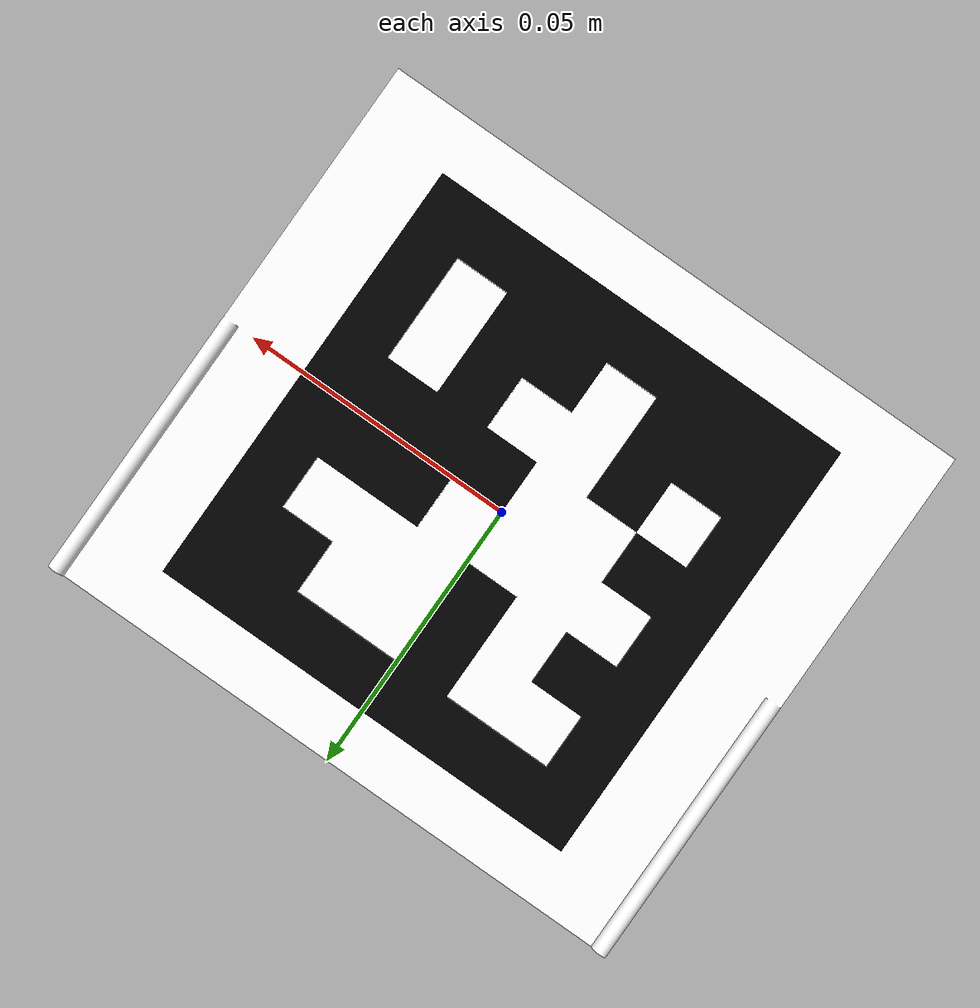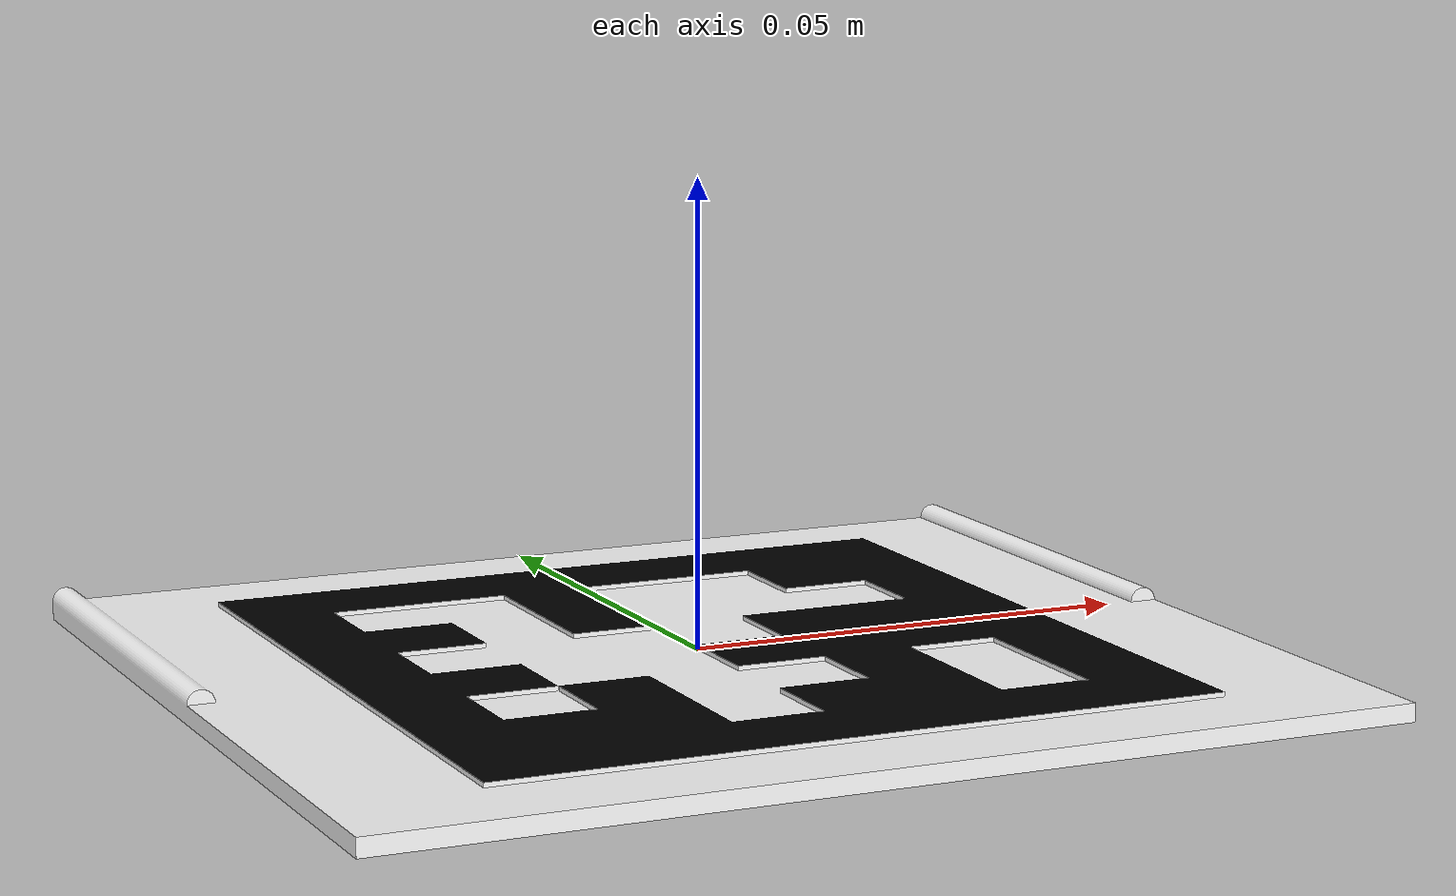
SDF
<?xml version='1.0' ?>
<sdf version='1.6'>
  <model name='April_Tag_2'>
    <static>false</static>
    <link name='link'>
      <pose>0 0 0 0 0 0</pose>
    <visual name='visual'>
      <geometry>
        <mesh>
          <uri>meshes/aprilTag1.dae</uri>
        </mesh>
      </geometry>
    </visual>
    <collision name='collision'>
      <geometry>
        <mesh>
          <uri>meshes/aprilTag1.dae</uri>
        </mesh>
      </geometry>
    </collision>
  </link>
</model>
</sdf>
